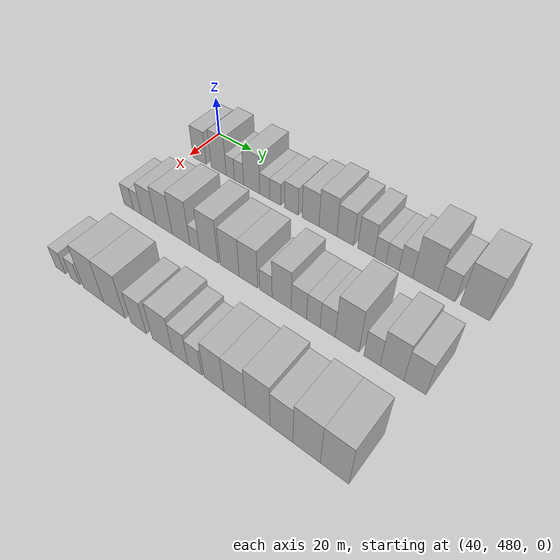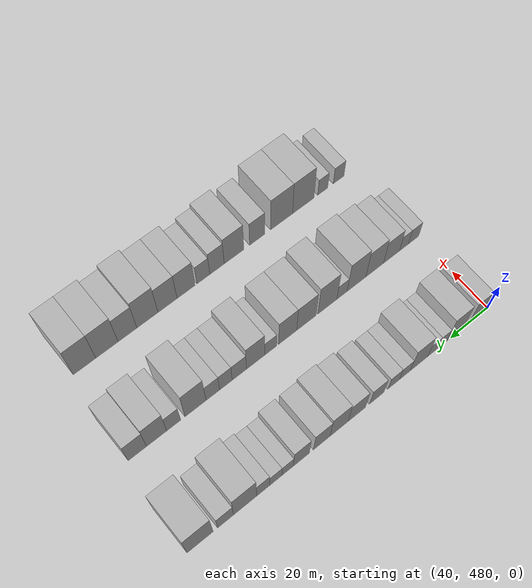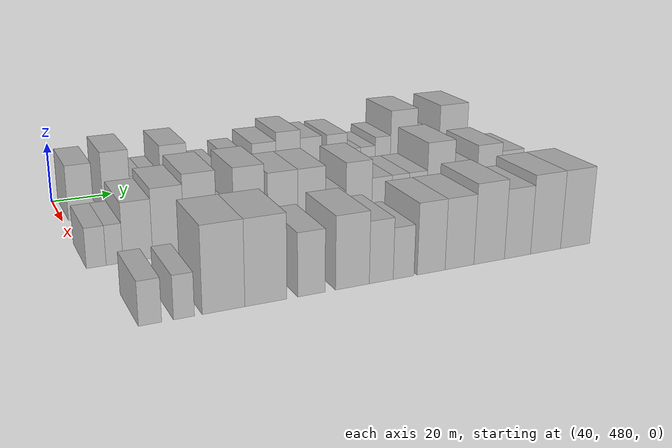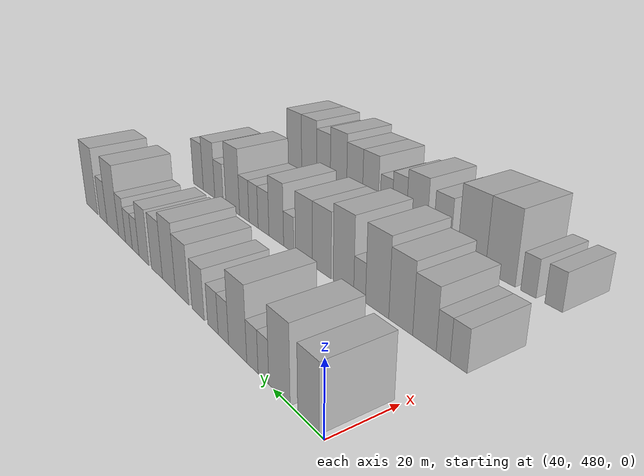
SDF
<sdf version="1.6">
 <world name="default">
  <model name="building_123">
   <static>1</static>
   <pose>50.0000 485.9661 0 0.000000 0.000000 0.000000</pose>
   <link name="link">
    <pose>0 0 9.00 0 0 0</pose>
    <collision name="collision"><geometry><box><size>20.0000 8.1418 18.0000</size></box></geometry></collision>
    <visual name="visual">
     <cast_shadows>0</cast_shadows>
     <geometry><box><size>20.0000 8.1418 18.0000</size></box></geometry>
     <material>
      <script>
       <uri>model://HANNAS_wall/materials/scripts</uri>
       <uri>model://HANNAS_wall/materials/textures</uri>
       <name>vrc/HANNAS_wall</name>
      </script>
     </material>
    </visual>
   </link>
  </model>
  <model name="building_124">
   <static>1</static>
   <pose>50.0000 497.5120 0 0.000000 0.000000 0.000000</pose>
   <link name="link">
    <pose>0 0 10.50 0 0 0</pose>
    <collision name="collision"><geometry><box><size>20.0000 8.9500 21.0000</size></box></geometry></collision>
    <visual name="visual">
     <cast_shadows>0</cast_shadows>
     <geometry><box><size>20.0000 8.9500 21.0000</size></box></geometry>
     <material>
      <script>
       <uri>model://HANNAS_wall/materials/scripts</uri>
       <uri>model://HANNAS_wall/materials/textures</uri>
       <name>vrc/HANNAS_wall</name>
      </script>
     </material>
    </visual>
   </link>
  </model>
  <model name="building_125">
   <static>1</static>
   <pose>50.0000 504.3932 0 0.000000 0.000000 0.000000</pose>
   <link name="link">
    <pose>0 0 6.00 0 0 0</pose>
    <collision name="collision"><geometry><box><size>20.0000 4.8125 12.0000</size></box></geometry></collision>
    <visual name="visual">
     <cast_shadows>0</cast_shadows>
     <geometry><box><size>20.0000 4.8125 12.0000</size></box></geometry>
     <material>
      <script>
       <uri>model://HANNAS_wall/materials/scripts</uri>
       <uri>model://HANNAS_wall/materials/textures</uri>
       <name>vrc/HANNAS_wall</name>
      </script>
     </material>
    </visual>
   </link>
  </model>
  <model name="building_126">
   <static>1</static>
   <pose>50.0000 509.4515 0 0.000000 0.000000 0.000000</pose>
   <link name="link">
    <pose>0 0 6.00 0 0 0</pose>
    <collision name="collision"><geometry><box><size>20.0000 5.3040 12.0000</size></box></geometry></collision>
    <visual name="visual">
     <cast_shadows>0</cast_shadows>
     <geometry><box><size>20.0000 5.3040 12.0000</size></box></geometry>
     <material>
      <script>
       <uri>model://HANNAS_wall/materials/scripts</uri>
       <uri>model://HANNAS_wall/materials/textures</uri>
       <name>vrc/HANNAS_wall</name>
      </script>
     </material>
    </visual>
   </link>
  </model>
  <model name="building_127">
   <static>1</static>
   <pose>50.0000 516.6309 0 0.000000 0.000000 0.000000</pose>
   <link name="link">
    <pose>0 0 10.50 0 0 0</pose>
    <collision name="collision"><geometry><box><size>20.0000 9.0547 21.0000</size></box></geometry></collision>
    <visual name="visual">
     <cast_shadows>0</cast_shadows>
     <geometry><box><size>20.0000 9.0547 21.0000</size></box></geometry>
     <material>
      <script>
       <uri>model://HANNAS_wall/materials/scripts</uri>
       <uri>model://HANNAS_wall/materials/textures</uri>
       <name>vrc/HANNAS_wall</name>
      </script>
     </material>
    </visual>
   </link>
  </model>
  <model name="building_128">
   <static>1</static>
   <pose>50.0000 523.9198 0 0.000000 0.000000 0.000000</pose>
   <link name="link">
    <pose>0 0 6.00 0 0 0</pose>
    <collision name="collision"><geometry><box><size>20.0000 5.5231 12.0000</size></box></geometry></collision>
    <visual name="visual">
     <cast_shadows>0</cast_shadows>
     <geometry><box><size>20.0000 5.5231 12.0000</size></box></geometry>
     <material>
      <script>
       <uri>model://HANNAS_wall/materials/scripts</uri>
       <uri>model://HANNAS_wall/materials/textures</uri>
       <name>vrc/HANNAS_wall</name>
      </script>
     </material>
    </visual>
   </link>
  </model>
  <model name="building_129">
   <static>1</static>
   <pose>50.0000 529.6099 0 0.000000 0.000000 0.000000</pose>
   <link name="link">
    <pose>0 0 6.00 0 0 0</pose>
    <collision name="collision"><geometry><box><size>20.0000 5.8572 12.0000</size></box></geometry></collision>
    <visual name="visual">
     <cast_shadows>0</cast_shadows>
     <geometry><box><size>20.0000 5.8572 12.0000</size></box></geometry>
     <material>
      <script>
       <uri>model://HANNAS_wall/materials/scripts</uri>
       <uri>model://HANNAS_wall/materials/textures</uri>
       <name>vrc/HANNAS_wall</name>
      </script>
     </material>
    </visual>
   </link>
  </model>
  <model name="building_130">
   <static>1</static>
   <pose>50.0000 538.1615 0 0.000000 0.000000 0.000000</pose>
   <link name="link">
    <pose>0 0 7.50 0 0 0</pose>
    <collision name="collision"><geometry><box><size>20.0000 7.2461 15.0000</size></box></geometry></collision>
    <visual name="visual">
     <cast_shadows>0</cast_shadows>
     <geometry><box><size>20.0000 7.2461 15.0000</size></box></geometry>
     <material>
      <script>
       <uri>model://HANNAS_wall/materials/scripts</uri>
       <uri>model://HANNAS_wall/materials/textures</uri>
       <name>vrc/HANNAS_wall</name>
      </script>
     </material>
    </visual>
   </link>
  </model>
  <model name="building_131">
   <static>1</static>
   <pose>50.0000 548.0895 0 0.000000 0.000000 0.000000</pose>
   <link name="link">
    <pose>0 0 9.00 0 0 0</pose>
    <collision name="collision"><geometry><box><size>20.0000 8.6099 18.0000</size></box></geometry></collision>
    <visual name="visual">
     <cast_shadows>0</cast_shadows>
     <geometry><box><size>20.0000 8.6099 18.0000</size></box></geometry>
     <material>
      <script>
       <uri>model://HANNAS_wall/materials/scripts</uri>
       <uri>model://HANNAS_wall/materials/textures</uri>
       <name>vrc/HANNAS_wall</name>
      </script>
     </material>
    </visual>
   </link>
  </model>
  <model name="building_132">
   <static>1</static>
   <pose>50.0000 556.8363 0 0.000000 0.000000 0.000000</pose>
   <link name="link">
    <pose>0 0 10.50 0 0 0</pose>
    <collision name="collision"><geometry><box><size>20.0000 8.8836 21.0000</size></box></geometry></collision>
    <visual name="visual">
     <cast_shadows>0</cast_shadows>
     <geometry><box><size>20.0000 8.8836 21.0000</size></box></geometry>
     <material>
      <script>
       <uri>model://HANNAS_wall/materials/scripts</uri>
       <uri>model://HANNAS_wall/materials/textures</uri>
       <name>vrc/HANNAS_wall</name>
      </script>
     </material>
    </visual>
   </link>
  </model>
  <model name="building_133">
   <static>1</static>
   <pose>50.0000 565.3056 0 0.000000 0.000000 0.000000</pose>
   <link name="link">
    <pose>0 0 9.00 0 0 0</pose>
    <collision name="collision"><geometry><box><size>20.0000 8.0551 18.0000</size></box></geometry></collision>
    <visual name="visual">
     <cast_shadows>0</cast_shadows>
     <geometry><box><size>20.0000 8.0551 18.0000</size></box></geometry>
     <material>
      <script>
       <uri>model://HANNAS_wall/materials/scripts</uri>
       <uri>model://HANNAS_wall/materials/textures</uri>
       <name>vrc/HANNAS_wall</name>
      </script>
     </material>
    </visual>
   </link>
  </model>
  <model name="building_134">
   <static>1</static>
   <pose>50.0000 575.1891 0 0.000000 0.000000 0.000000</pose>
   <link name="link">
    <pose>0 0 9.00 0 0 0</pose>
    <collision name="collision"><geometry><box><size>20.0000 7.7119 18.0000</size></box></geometry></collision>
    <visual name="visual">
     <cast_shadows>0</cast_shadows>
     <geometry><box><size>20.0000 7.7119 18.0000</size></box></geometry>
     <material>
      <script>
       <uri>model://HANNAS_wall/materials/scripts</uri>
       <uri>model://HANNAS_wall/materials/textures</uri>
       <name>vrc/HANNAS_wall</name>
      </script>
     </material>
    </visual>
   </link>
  </model>
  <model name="building_135">
   <static>1</static>
   <pose>50.0000 581.7553 0 0.000000 0.000000 0.000000</pose>
   <link name="link">
    <pose>0 0 6.00 0 0 0</pose>
    <collision name="collision"><geometry><box><size>20.0000 5.4205 12.0000</size></box></geometry></collision>
    <visual name="visual">
     <cast_shadows>0</cast_shadows>
     <geometry><box><size>20.0000 5.4205 12.0000</size></box></geometry>
     <material>
      <script>
       <uri>model://HANNAS_wall/materials/scripts</uri>
       <uri>model://HANNAS_wall/materials/textures</uri>
       <name>vrc/HANNAS_wall</name>
      </script>
     </material>
    </visual>
   </link>
  </model>
  <model name="building_136">
   <static>1</static>
   <pose>50.0000 587.3255 0 0.000000 0.000000 0.000000</pose>
   <link name="link">
    <pose>0 0 6.00 0 0 0</pose>
    <collision name="collision"><geometry><box><size>20.0000 5.7199 12.0000</size></box></geometry></collision>
    <visual name="visual">
     <cast_shadows>0</cast_shadows>
     <geometry><box><size>20.0000 5.7199 12.0000</size></box></geometry>
     <material>
      <script>
       <uri>model://HANNAS_wall/materials/scripts</uri>
       <uri>model://HANNAS_wall/materials/textures</uri>
       <name>vrc/HANNAS_wall</name>
      </script>
     </material>
    </visual>
   </link>
  </model>
  <model name="building_137">
   <static>1</static>
   <pose>50.0000 593.2337 0 0.000000 0.000000 0.000000</pose>
   <link name="link">
    <pose>0 0 7.50 0 0 0</pose>
    <collision name="collision"><geometry><box><size>20.0000 6.0965 15.0000</size></box></geometry></collision>
    <visual name="visual">
     <cast_shadows>0</cast_shadows>
     <geometry><box><size>20.0000 6.0965 15.0000</size></box></geometry>
     <material>
      <script>
       <uri>model://HANNAS_wall/materials/scripts</uri>
       <uri>model://HANNAS_wall/materials/textures</uri>
       <name>vrc/HANNAS_wall</name>
      </script>
     </material>
    </visual>
   </link>
  </model>
  <model name="building_138">
   <static>1</static>
   <pose>50.0000 601.6262 0 0.000000 0.000000 0.000000</pose>
   <link name="link">
    <pose>0 0 12.00 0 0 0</pose>
    <collision name="collision"><geometry><box><size>20.0000 10.6884 24.0000</size></box></geometry></collision>
    <visual name="visual">
     <cast_shadows>0</cast_shadows>
     <geometry><box><size>20.0000 10.6884 24.0000</size></box></geometry>
     <material>
      <script>
       <uri>model://HANNAS_wall/materials/scripts</uri>
       <uri>model://HANNAS_wall/materials/textures</uri>
       <name>vrc/HANNAS_wall</name>
      </script>
     </material>
    </visual>
   </link>
  </model>
  <model name="building_139">
   <static>1</static>
   <pose>50.0000 610.6172 0 0.000000 0.000000 0.000000</pose>
   <link name="link">
    <pose>0 0 7.50 0 0 0</pose>
    <collision name="collision"><geometry><box><size>20.0000 7.2935 15.0000</size></box></geometry></collision>
    <visual name="visual">
     <cast_shadows>0</cast_shadows>
     <geometry><box><size>20.0000 7.2935 15.0000</size></box></geometry>
     <material>
      <script>
       <uri>model://HANNAS_wall/materials/scripts</uri>
       <uri>model://HANNAS_wall/materials/textures</uri>
       <name>vrc/HANNAS_wall</name>
      </script>
     </material>
    </visual>
   </link>
  </model>
  <model name="building_140">
   <static>1</static>
   <pose>50.0000 622.1467 0 0.000000 0.000000 0.000000</pose>
   <link name="link">
    <pose>0 0 12.00 0 0 0</pose>
    <collision name="collision"><geometry><box><size>20.0000 11.7655 24.0000</size></box></geometry></collision>
    <visual name="visual">
     <cast_shadows>0</cast_shadows>
     <geometry><box><size>20.0000 11.7655 24.0000</size></box></geometry>
     <material>
      <script>
       <uri>model://HANNAS_wall/materials/scripts</uri>
       <uri>model://HANNAS_wall/materials/textures</uri>
       <name>vrc/HANNAS_wall</name>
      </script>
     </material>
    </visual>
   </link>
  </model>
  <model name="building_258">
   <static>1</static>
   <pose>90.0000 482.5900 0 0.000000 0.000000 0.000000</pose>
   <link name="link">
    <pose>0 0 6.00 0 0 0</pose>
    <collision name="collision"><geometry><box><size>20.0000 5.5734 12.0000</size></box></geometry></collision>
    <visual name="visual">
     <cast_shadows>0</cast_shadows>
     <geometry><box><size>20.0000 5.5734 12.0000</size></box></geometry>
     <material>
      <script>
       <uri>model://HANNAS_wall/materials/scripts</uri>
       <uri>model://HANNAS_wall/materials/textures</uri>
       <name>vrc/HANNAS_wall</name>
      </script>
     </material>
    </visual>
   </link>
  </model>
  <model name="building_259">
   <static>1</static>
   <pose>90.0000 487.7816 0 0.000000 0.000000 0.000000</pose>
   <link name="link">
    <pose>0 0 6.00 0 0 0</pose>
    <collision name="collision"><geometry><box><size>20.0000 4.8100 12.0000</size></box></geometry></collision>
    <visual name="visual">
     <cast_shadows>0</cast_shadows>
     <geometry><box><size>20.0000 4.8100 12.0000</size></box></geometry>
     <material>
      <script>
       <uri>model://HANNAS_wall/materials/scripts</uri>
       <uri>model://HANNAS_wall/materials/textures</uri>
       <name>vrc/HANNAS_wall</name>
      </script>
     </material>
    </visual>
   </link>
  </model>
  <model name="building_260">
   <static>1</static>
   <pose>90.0000 494.4795 0 0.000000 0.000000 0.000000</pose>
   <link name="link">
    <pose>0 0 9.00 0 0 0</pose>
    <collision name="collision"><geometry><box><size>20.0000 8.5857 18.0000</size></box></geometry></collision>
    <visual name="visual">
     <cast_shadows>0</cast_shadows>
     <geometry><box><size>20.0000 8.5857 18.0000</size></box></geometry>
     <material>
      <script>
       <uri>model://HANNAS_wall/materials/scripts</uri>
       <uri>model://HANNAS_wall/materials/textures</uri>
       <name>vrc/HANNAS_wall</name>
      </script>
     </material>
    </visual>
   </link>
  </model>
  <model name="building_261">
   <static>1</static>
   <pose>90.0000 503.4653 0 0.000000 0.000000 0.000000</pose>
   <link name="link">
    <pose>0 0 10.50 0 0 0</pose>
    <collision name="collision"><geometry><box><size>20.0000 9.3860 21.0000</size></box></geometry></collision>
    <visual name="visual">
     <cast_shadows>0</cast_shadows>
     <geometry><box><size>20.0000 9.3860 21.0000</size></box></geometry>
     <material>
      <script>
       <uri>model://HANNAS_wall/materials/scripts</uri>
       <uri>model://HANNAS_wall/materials/textures</uri>
       <name>vrc/HANNAS_wall</name>
      </script>
     </material>
    </visual>
   </link>
  </model>
  <model name="building_262">
   <static>1</static>
   <pose>90.0000 513.0955 0 0.000000 0.000000 0.000000</pose>
   <link name="link">
    <pose>0 0 12.00 0 0 0</pose>
    <collision name="collision"><geometry><box><size>20.0000 9.8744 24.0000</size></box></geometry></collision>
    <visual name="visual">
     <cast_shadows>0</cast_shadows>
     <geometry><box><size>20.0000 9.8744 24.0000</size></box></geometry>
     <material>
      <script>
       <uri>model://HANNAS_wall/materials/scripts</uri>
       <uri>model://HANNAS_wall/materials/textures</uri>
       <name>vrc/HANNAS_wall</name>
      </script>
     </material>
    </visual>
   </link>
  </model>
  <model name="building_263">
   <static>1</static>
   <pose>90.0000 520.6710 0 0.000000 0.000000 0.000000</pose>
   <link name="link">
    <pose>0 0 6.00 0 0 0</pose>
    <collision name="collision"><geometry><box><size>20.0000 5.2766 12.0000</size></box></geometry></collision>
    <visual name="visual">
     <cast_shadows>0</cast_shadows>
     <geometry><box><size>20.0000 5.2766 12.0000</size></box></geometry>
     <material>
      <script>
       <uri>model://HANNAS_wall/materials/scripts</uri>
       <uri>model://HANNAS_wall/materials/textures</uri>
       <name>vrc/HANNAS_wall</name>
      </script>
     </material>
    </visual>
   </link>
  </model>
  <model name="building_264">
   <static>1</static>
   <pose>90.0000 528.1899 0 0.000000 0.000000 0.000000</pose>
   <link name="link">
    <pose>0 0 12.00 0 0 0</pose>
    <collision name="collision"><geometry><box><size>20.0000 9.7612 24.0000</size></box></geometry></collision>
    <visual name="visual">
     <cast_shadows>0</cast_shadows>
     <geometry><box><size>20.0000 9.7612 24.0000</size></box></geometry>
     <material>
      <script>
       <uri>model://HANNAS_wall/materials/scripts</uri>
       <uri>model://HANNAS_wall/materials/textures</uri>
       <name>vrc/HANNAS_wall</name>
      </script>
     </material>
    </visual>
   </link>
  </model>
  <model name="building_265">
   <static>1</static>
   <pose>90.0000 538.9353 0 0.000000 0.000000 0.000000</pose>
   <link name="link">
    <pose>0 0 10.50 0 0 0</pose>
    <collision name="collision"><geometry><box><size>20.0000 9.7296 21.0000</size></box></geometry></collision>
    <visual name="visual">
     <cast_shadows>0</cast_shadows>
     <geometry><box><size>20.0000 9.7296 21.0000</size></box></geometry>
     <material>
      <script>
       <uri>model://HANNAS_wall/materials/scripts</uri>
       <uri>model://HANNAS_wall/materials/textures</uri>
       <name>vrc/HANNAS_wall</name>
      </script>
     </material>
    </visual>
   </link>
  </model>
  <model name="building_266">
   <static>1</static>
   <pose>90.0000 548.3500 0 0.000000 0.000000 0.000000</pose>
   <link name="link">
    <pose>0 0 10.50 0 0 0</pose>
    <collision name="collision"><geometry><box><size>20.0000 9.0999 21.0000</size></box></geometry></collision>
    <visual name="visual">
     <cast_shadows>0</cast_shadows>
     <geometry><box><size>20.0000 9.0999 21.0000</size></box></geometry>
     <material>
      <script>
       <uri>model://HANNAS_wall/materials/scripts</uri>
       <uri>model://HANNAS_wall/materials/textures</uri>
       <name>vrc/HANNAS_wall</name>
      </script>
     </material>
    </visual>
   </link>
  </model>
  <model name="building_267">
   <static>1</static>
   <pose>90.0000 556.8402 0 0.000000 0.000000 0.000000</pose>
   <link name="link">
    <pose>0 0 6.00 0 0 0</pose>
    <collision name="collision"><geometry><box><size>20.0000 5.8805 12.0000</size></box></geometry></collision>
    <visual name="visual">
     <cast_shadows>0</cast_shadows>
     <geometry><box><size>20.0000 5.8805 12.0000</size></box></geometry>
     <material>
      <script>
       <uri>model://HANNAS_wall/materials/scripts</uri>
       <uri>model://HANNAS_wall/materials/textures</uri>
       <name>vrc/HANNAS_wall</name>
      </script>
     </material>
    </visual>
   </link>
  </model>
  <model name="building_268">
   <static>1</static>
   <pose>90.0000 564.2443 0 0.000000 0.000000 0.000000</pose>
   <link name="link">
    <pose>0 0 10.50 0 0 0</pose>
    <collision name="collision"><geometry><box><size>20.0000 8.9277 21.0000</size></box></geometry></collision>
    <visual name="visual">
     <cast_shadows>0</cast_shadows>
     <geometry><box><size>20.0000 8.9277 21.0000</size></box></geometry>
     <material>
      <script>
       <uri>model://HANNAS_wall/materials/scripts</uri>
       <uri>model://HANNAS_wall/materials/textures</uri>
       <name>vrc/HANNAS_wall</name>
      </script>
     </material>
    </visual>
   </link>
  </model>
  <model name="building_269">
   <static>1</static>
   <pose>90.0000 572.1969 0 0.000000 0.000000 0.000000</pose>
   <link name="link">
    <pose>0 0 7.50 0 0 0</pose>
    <collision name="collision"><geometry><box><size>20.0000 6.9775 15.0000</size></box></geometry></collision>
    <visual name="visual">
     <cast_shadows>0</cast_shadows>
     <geometry><box><size>20.0000 6.9775 15.0000</size></box></geometry>
     <material>
      <script>
       <uri>model://HANNAS_wall/materials/scripts</uri>
       <uri>model://HANNAS_wall/materials/textures</uri>
       <name>vrc/HANNAS_wall</name>
      </script>
     </material>
    </visual>
   </link>
  </model>
  <model name="building_270">
   <static>1</static>
   <pose>90.0000 578.7076 0 0.000000 0.000000 0.000000</pose>
   <link name="link">
    <pose>0 0 7.50 0 0 0</pose>
    <collision name="collision"><geometry><box><size>20.0000 6.0438 15.0000</size></box></geometry></collision>
    <visual name="visual">
     <cast_shadows>0</cast_shadows>
     <geometry><box><size>20.0000 6.0438 15.0000</size></box></geometry>
     <material>
      <script>
       <uri>model://HANNAS_wall/materials/scripts</uri>
       <uri>model://HANNAS_wall/materials/textures</uri>
       <name>vrc/HANNAS_wall</name>
      </script>
     </material>
    </visual>
   </link>
  </model>
  <model name="building_271">
   <static>1</static>
   <pose>90.0000 584.9846 0 0.000000 0.000000 0.000000</pose>
   <link name="link">
    <pose>0 0 7.50 0 0 0</pose>
    <collision name="collision"><geometry><box><size>20.0000 6.5103 15.0000</size></box></geometry></collision>
    <visual name="visual">
     <cast_shadows>0</cast_shadows>
     <geometry><box><size>20.0000 6.5103 15.0000</size></box></geometry>
     <material>
      <script>
       <uri>model://HANNAS_wall/materials/scripts</uri>
       <uri>model://HANNAS_wall/materials/textures</uri>
       <name>vrc/HANNAS_wall</name>
      </script>
     </material>
    </visual>
   </link>
  </model>
  <model name="building_272">
   <static>1</static>
   <pose>90.0000 593.2257 0 0.000000 0.000000 0.000000</pose>
   <link name="link">
    <pose>0 0 12.00 0 0 0</pose>
    <collision name="collision"><geometry><box><size>20.0000 9.9718 24.0000</size></box></geometry></collision>
    <visual name="visual">
     <cast_shadows>0</cast_shadows>
     <geometry><box><size>20.0000 9.9718 24.0000</size></box></geometry>
     <material>
      <script>
       <uri>model://HANNAS_wall/materials/scripts</uri>
       <uri>model://HANNAS_wall/materials/textures</uri>
       <name>vrc/HANNAS_wall</name>
      </script>
     </material>
    </visual>
   </link>
  </model>
  <model name="building_273">
   <static>1</static>
   <pose>90.0000 603.4936 0 0.000000 0.000000 0.000000</pose>
   <link name="link">
    <pose>0 0 7.50 0 0 0</pose>
    <collision name="collision"><geometry><box><size>20.0000 6.5639 15.0000</size></box></geometry></collision>
    <visual name="visual">
     <cast_shadows>0</cast_shadows>
     <geometry><box><size>20.0000 6.5639 15.0000</size></box></geometry>
     <material>
      <script>
       <uri>model://HANNAS_wall/materials/scripts</uri>
       <uri>model://HANNAS_wall/materials/textures</uri>
       <name>vrc/HANNAS_wall</name>
      </script>
     </material>
    </visual>
   </link>
  </model>
  <model name="building_274">
   <static>1</static>
   <pose>90.0000 611.4252 0 0.000000 0.000000 0.000000</pose>
   <link name="link">
    <pose>0 0 10.50 0 0 0</pose>
    <collision name="collision"><geometry><box><size>20.0000 9.2993 21.0000</size></box></geometry></collision>
    <visual name="visual">
     <cast_shadows>0</cast_shadows>
     <geometry><box><size>20.0000 9.2993 21.0000</size></box></geometry>
     <material>
      <script>
       <uri>model://HANNAS_wall/materials/scripts</uri>
       <uri>model://HANNAS_wall/materials/textures</uri>
       <name>vrc/HANNAS_wall</name>
      </script>
     </material>
    </visual>
   </link>
  </model>
  <model name="building_275">
   <static>1</static>
   <pose>90.0000 620.2771 0 0.000000 0.000000 0.000000</pose>
   <link name="link">
    <pose>0 0 9.00 0 0 0</pose>
    <collision name="collision"><geometry><box><size>20.0000 8.4045 18.0000</size></box></geometry></collision>
    <visual name="visual">
     <cast_shadows>0</cast_shadows>
     <geometry><box><size>20.0000 8.4045 18.0000</size></box></geometry>
     <material>
      <script>
       <uri>model://HANNAS_wall/materials/scripts</uri>
       <uri>model://HANNAS_wall/materials/textures</uri>
       <name>vrc/HANNAS_wall</name>
      </script>
     </material>
    </visual>
   </link>
  </model>
  <model name="building_396">
   <static>1</static>
   <pose>130.0000 487.6850 0 0.000000 0.000000 0.000000</pose>
   <link name="link">
    <pose>0 0 6.00 0 0 0</pose>
    <collision name="collision"><geometry><box><size>20.0000 5.8433 12.0000</size></box></geometry></collision>
    <visual name="visual">
     <cast_shadows>0</cast_shadows>
     <geometry><box><size>20.0000 5.8433 12.0000</size></box></geometry>
     <material>
      <script>
       <uri>model://HANNAS_wall/materials/scripts</uri>
       <uri>model://HANNAS_wall/materials/textures</uri>
       <name>vrc/HANNAS_wall</name>
      </script>
     </material>
    </visual>
   </link>
  </model>
  <model name="building_397">
   <static>1</static>
   <pose>130.0000 496.3202 0 0.000000 0.000000 0.000000</pose>
   <link name="link">
    <pose>0 0 6.00 0 0 0</pose>
    <collision name="collision"><geometry><box><size>20.0000 5.4271 12.0000</size></box></geometry></collision>
    <visual name="visual">
     <cast_shadows>0</cast_shadows>
     <geometry><box><size>20.0000 5.4271 12.0000</size></box></geometry>
     <material>
      <script>
       <uri>model://HANNAS_wall/materials/scripts</uri>
       <uri>model://HANNAS_wall/materials/textures</uri>
       <name>vrc/HANNAS_wall</name>
      </script>
     </material>
    </visual>
   </link>
  </model>
  <model name="building_398">
   <static>1</static>
   <pose>130.0000 506.7186 0 0.000000 0.000000 0.000000</pose>
   <link name="link">
    <pose>0 0 12.00 0 0 0</pose>
    <collision name="collision"><geometry><box><size>20.0000 11.3697 24.0000</size></box></geometry></collision>
    <visual name="visual">
     <cast_shadows>0</cast_shadows>
     <geometry><box><size>20.0000 11.3697 24.0000</size></box></geometry>
     <material>
      <script>
       <uri>model://HANNAS_wall/materials/scripts</uri>
       <uri>model://HANNAS_wall/materials/textures</uri>
       <name>vrc/HANNAS_wall</name>
      </script>
     </material>
    </visual>
   </link>
  </model>
  <model name="building_399">
   <static>1</static>
   <pose>130.0000 518.1915 0 0.000000 0.000000 0.000000</pose>
   <link name="link">
    <pose>0 0 12.00 0 0 0</pose>
    <collision name="collision"><geometry><box><size>20.0000 11.5762 24.0000</size></box></geometry></collision>
    <visual name="visual">
     <cast_shadows>0</cast_shadows>
     <geometry><box><size>20.0000 11.5762 24.0000</size></box></geometry>
     <material>
      <script>
       <uri>model://HANNAS_wall/materials/scripts</uri>
       <uri>model://HANNAS_wall/materials/textures</uri>
       <name>vrc/HANNAS_wall</name>
      </script>
     </material>
    </visual>
   </link>
  </model>
  <model name="building_400">
   <static>1</static>
   <pose>130.0000 530.9166 0 0.000000 0.000000 0.000000</pose>
   <link name="link">
    <pose>0 0 9.00 0 0 0</pose>
    <collision name="collision"><geometry><box><size>20.0000 7.8739 18.0000</size></box></geometry></collision>
    <visual name="visual">
     <cast_shadows>0</cast_shadows>
     <geometry><box><size>20.0000 7.8739 18.0000</size></box></geometry>
     <material>
      <script>
       <uri>model://HANNAS_wall/materials/scripts</uri>
       <uri>model://HANNAS_wall/materials/textures</uri>
       <name>vrc/HANNAS_wall</name>
      </script>
     </material>
    </visual>
   </link>
  </model>
  <model name="building_401">
   <static>1</static>
   <pose>130.0000 542.8620 0 0.000000 0.000000 0.000000</pose>
   <link name="link">
    <pose>0 0 10.50 0 0 0</pose>
    <collision name="collision"><geometry><box><size>20.0000 10.0170 21.0000</size></box></geometry></collision>
    <visual name="visual">
     <cast_shadows>0</cast_shadows>
     <geometry><box><size>20.0000 10.0170 21.0000</size></box></geometry>
     <material>
      <script>
       <uri>model://HANNAS_wall/materials/scripts</uri>
       <uri>model://HANNAS_wall/materials/textures</uri>
       <name>vrc/HANNAS_wall</name>
      </script>
     </material>
    </visual>
   </link>
  </model>
  <model name="building_402">
   <static>1</static>
   <pose>130.0000 551.4988 0 0.000000 0.000000 0.000000</pose>
   <link name="link">
    <pose>0 0 9.00 0 0 0</pose>
    <collision name="collision"><geometry><box><size>20.0000 7.2565 18.0000</size></box></geometry></collision>
    <visual name="visual">
     <cast_shadows>0</cast_shadows>
     <geometry><box><size>20.0000 7.2565 18.0000</size></box></geometry>
     <material>
      <script>
       <uri>model://HANNAS_wall/materials/scripts</uri>
       <uri>model://HANNAS_wall/materials/textures</uri>
       <name>vrc/HANNAS_wall</name>
      </script>
     </material>
    </visual>
   </link>
  </model>
  <model name="building_403">
   <static>1</static>
   <pose>130.0000 558.3437 0 0.000000 0.000000 0.000000</pose>
   <link name="link">
    <pose>0 0 7.50 0 0 0</pose>
    <collision name="collision"><geometry><box><size>20.0000 6.4332 15.0000</size></box></geometry></collision>
    <visual name="visual">
     <cast_shadows>0</cast_shadows>
     <geometry><box><size>20.0000 6.4332 15.0000</size></box></geometry>
     <material>
      <script>
       <uri>model://HANNAS_wall/materials/scripts</uri>
       <uri>model://HANNAS_wall/materials/textures</uri>
       <name>vrc/HANNAS_wall</name>
      </script>
     </material>
    </visual>
   </link>
  </model>
  <model name="building_404">
   <static>1</static>
   <pose>130.0000 566.9742 0 0.000000 0.000000 0.000000</pose>
   <link name="link">
    <pose>0 0 10.50 0 0 0</pose>
    <collision name="collision"><geometry><box><size>20.0000 8.8277 21.0000</size></box></geometry></collision>
    <visual name="visual">
     <cast_shadows>0</cast_shadows>
     <geometry><box><size>20.0000 8.8277 21.0000</size></box></geometry>
     <material>
      <script>
       <uri>model://HANNAS_wall/materials/scripts</uri>
       <uri>model://HANNAS_wall/materials/textures</uri>
       <name>vrc/HANNAS_wall</name>
      </script>
     </material>
    </visual>
   </link>
  </model>
  <model name="building_405">
   <static>1</static>
   <pose>130.0000 576.0744 0 0.000000 0.000000 0.000000</pose>
   <link name="link">
    <pose>0 0 10.50 0 0 0</pose>
    <collision name="collision"><geometry><box><size>20.0000 9.3727 21.0000</size></box></geometry></collision>
    <visual name="visual">
     <cast_shadows>0</cast_shadows>
     <geometry><box><size>20.0000 9.3727 21.0000</size></box></geometry>
     <material>
      <script>
       <uri>model://HANNAS_wall/materials/scripts</uri>
       <uri>model://HANNAS_wall/materials/textures</uri>
       <name>vrc/HANNAS_wall</name>
      </script>
     </material>
    </visual>
   </link>
  </model>
  <model name="building_406">
   <static>1</static>
   <pose>130.0000 585.8609 0 0.000000 0.000000 0.000000</pose>
   <link name="link">
    <pose>0 0 12.00 0 0 0</pose>
    <collision name="collision"><geometry><box><size>20.0000 10.2002 24.0000</size></box></geometry></collision>
    <visual name="visual">
     <cast_shadows>0</cast_shadows>
     <geometry><box><size>20.0000 10.2002 24.0000</size></box></geometry>
     <material>
      <script>
       <uri>model://HANNAS_wall/materials/scripts</uri>
       <uri>model://HANNAS_wall/materials/textures</uri>
       <name>vrc/HANNAS_wall</name>
      </script>
     </material>
    </visual>
   </link>
  </model>
  <model name="building_407">
   <static>1</static>
   <pose>130.0000 595.4363 0 0.000000 0.000000 0.000000</pose>
   <link name="link">
    <pose>0 0 10.50 0 0 0</pose>
    <collision name="collision"><geometry><box><size>20.0000 8.9507 21.0000</size></box></geometry></collision>
    <visual name="visual">
     <cast_shadows>0</cast_shadows>
     <geometry><box><size>20.0000 8.9507 21.0000</size></box></geometry>
     <material>
      <script>
       <uri>model://HANNAS_wall/materials/scripts</uri>
       <uri>model://HANNAS_wall/materials/textures</uri>
       <name>vrc/HANNAS_wall</name>
      </script>
     </material>
    </visual>
   </link>
  </model>
  <model name="building_408">
   <static>1</static>
   <pose>130.0000 605.1836 0 0.000000 0.000000 0.000000</pose>
   <link name="link">
    <pose>0 0 12.00 0 0 0</pose>
    <collision name="collision"><geometry><box><size>20.0000 10.5439 24.0000</size></box></geometry></collision>
    <visual name="visual">
     <cast_shadows>0</cast_shadows>
     <geometry><box><size>20.0000 10.5439 24.0000</size></box></geometry>
     <material>
      <script>
       <uri>model://HANNAS_wall/materials/scripts</uri>
       <uri>model://HANNAS_wall/materials/textures</uri>
       <name>vrc/HANNAS_wall</name>
      </script>
     </material>
    </visual>
   </link>
  </model>
  <model name="building_409">
   <static>1</static>
   <pose>130.0000 615.7106 0 0.000000 0.000000 0.000000</pose>
   <link name="link">
    <pose>0 0 12.00 0 0 0</pose>
    <collision name="collision"><geometry><box><size>20.0000 10.5100 24.0000</size></box></geometry></collision>
    <visual name="visual">
     <cast_shadows>0</cast_shadows>
     <geometry><box><size>20.0000 10.5100 24.0000</size></box></geometry>
     <material>
      <script>
       <uri>model://HANNAS_wall/materials/scripts</uri>
       <uri>model://HANNAS_wall/materials/textures</uri>
       <name>vrc/HANNAS_wall</name>
      </script>
     </material>
    </visual>
   </link>
  </model>
 </world>
</sdf>
